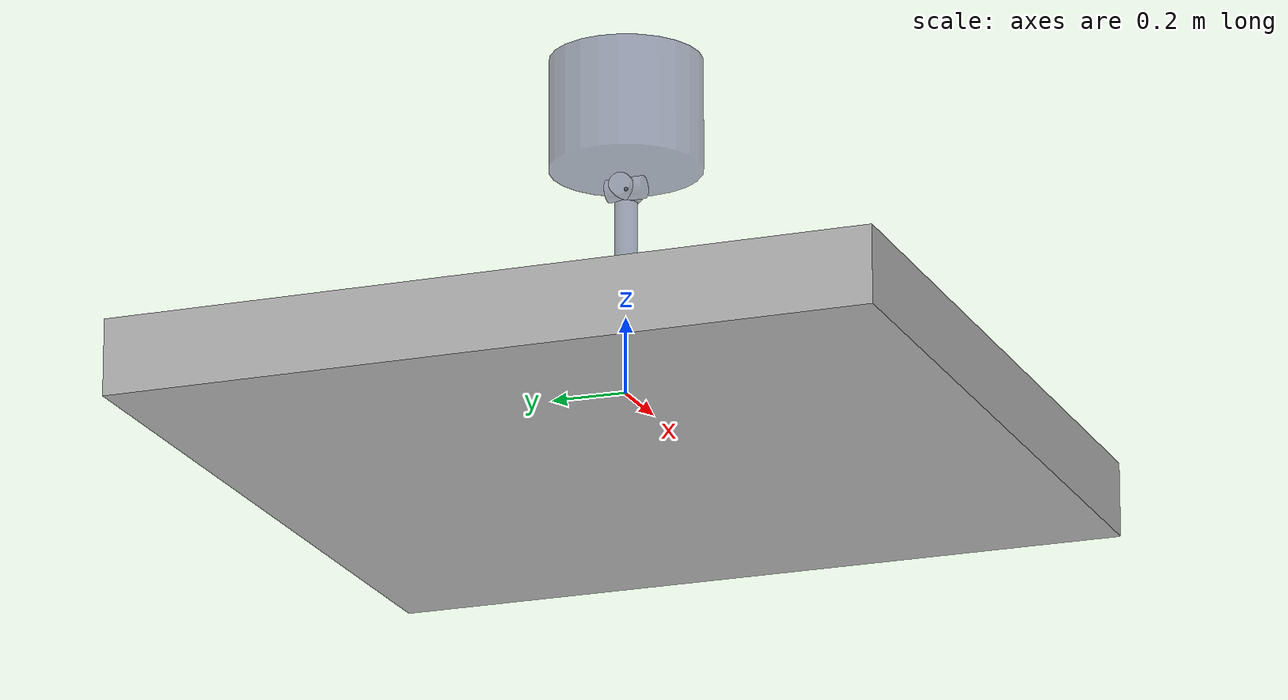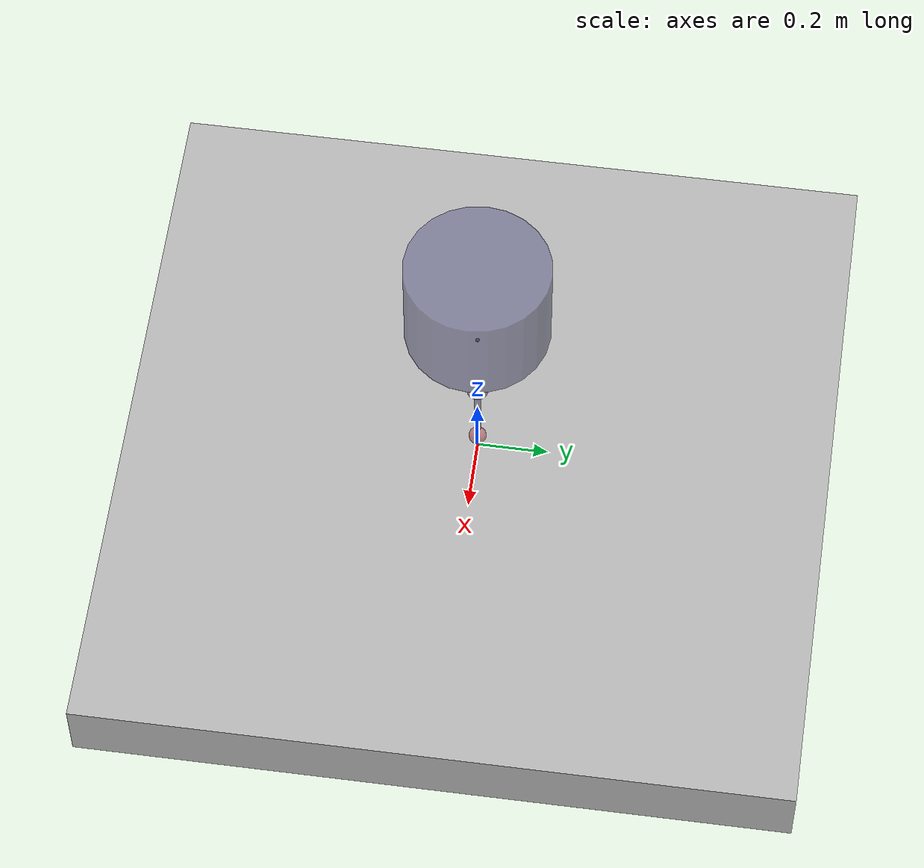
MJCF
<mujoco>
  <compiler coordinate="local" angle="degree"/>
  <option timestep="0.001" iterations="100" tolerance="1e-10" solver="Newton" gravity="0 0 -9.81"/>

  <visual>
    <map stiffness="2" stiffnessrot="100"/>
    <rgba haze="0.5 0.5 0.5 1"/>
    <quality shadowsize="2048"/>
    <headlight ambient="0.5 0.5 0.5"  diffuse="0.4 0.4 0.4" specular="0.5 0.5 0.5"/>
  </visual>

  <asset>
    <texture type="skybox" builtin="gradient" rgb1="0.5 0.5 0.5" rgb2="0.5 0.5 0.5" width="512" height="512"/>
    <texture name="texplane" type="2d" builtin="checker" rgb1="1 1 1" rgb2="1 1 1" width="512" height="512" mark="cross" markrgb="0 0 0"/>
    <material name="matplane" reflectance="0.0" texture="texplane" texrepeat="1 1" texuniform="true"/>
  </asset>

  <worldbody>
    <light mode="targetbodycom" target="model" directional="false" diffuse="0.3 0.3 0.3" specular="0.5 0.5 0.5" pos="4 0 4.0" dir="-1 0 -1" castshadow="true"/>
    <!-- ground top at z=0 to match tact's implicit ground plane -->
    <geom name="floor" type="box" pos="0 0 -0.10" size="1 1 0.1" condim="3" rgba="0.7 0.7 0.7 1"/>

    <body name="model" pos="0 0 0.55">
      <freejoint/>
      <inertial pos="0 0 0.2" mass="1" diaginertia="0.016 0.016 0.016"/>
      <geom name="head" type="cylinder" fromto="0 0 0.35  0 0 0.05" size="0.2" mass="0" rgba="0.3 0.3 0.5 0.5"/>
      <site name="base" pos="0 0 0" euler="0 0 0" type="sphere" size="0.005"/>

      <!-- link1: joint axis = base +X; sphere(r=0.1) inertia -> diag 0.0004 -->
      <body>
        <joint name="joint1" type="hinge" pos="0 0 0" axis="1 0 0" damping="0.8"/>
        <inertial pos="0 0 0" mass="0.1" diaginertia="0.0004 0.0004 0.0004"/>
        <geom type="cylinder" pos="0 0 0" euler="0 90 0" size="0.03 0.05" mass="0" rgba="0.3 0.3 0.5 0.5"/>

        <!-- link2: joint axis = base +Y; mk1 COM [0.075,0,0] in link2 frame (link2 +X = world -Z) -> [0,0,-0.075] here -->
        <body>
          <joint name="joint2" type="hinge" pos="0 0 0" axis="0 1 0" damping="0.8"/>
          <inertial pos="0 0 -0.075" mass="0.2" diaginertia="0.0008 0.0008 0.0008"/>
          <!-- shape #1: cylinder along link2 +Z (= world +Y) at origin -->
          <geom type="cylinder" pos="0 0 0" euler="90 0 0" size="0.03 0.05" mass="0" rgba="0.3 0.3 0.5 0.5"/>
          <!-- shape #2: cylinder along world -Z, center 0.15 m below joint2, half-length 0.11, radius 0.03 -->
          <geom type="cylinder" fromto="0 0 -0.04  0 0 -0.26" size="0.03" mass="0" rgba="0.3 0.3 0.5 0.5"/>

          <body>
            <joint name="joint3" type="slide" axis="0 0 -1"
                   stiffness="1000" damping="3"
                   springref="0.01" range="-0.15 0" limited="true"/>
            <inertial pos="0 0 -0.38" mass="0.1" diaginertia="0.0004 0.0004 0.0004"/>
            <geom type="cylinder" fromto="0 0 -0.14  0 0 -0.46" size="0.01" mass="0" rgba="0.3 0.3 0.5 0.5"/>
            <geom name="foot" type="sphere" pos="0 0 -0.50" size="0.025" mass="0" rgba="0.8 0.3 0.3 0.5"/>
            <site name="endtip" pos="0 0 -0.50" euler="180 0 0" type="sphere" size="0.005"/>
          </body>
        </body>
      </body>
    </body>
  </worldbody>

  <contact>
    <pair geom1="floor" geom2="foot"
          condim="6"
          solref="-35000 -150"
          solimp="0.99 0.99 0.001 0.5 2"
          friction="0.9 0.9 0.035 0.0125 0.0125"/>
    <!-- base also has contact:[1,mat1] in mk1.yaml; base-floor uses the same averaged params (geom name='head' kept) -->
    <pair geom1="floor" geom2="head"
          condim="6"
          solref="-35000 -150"
          solimp="0.99 0.99 0.001 0.5 2"
          friction="0.9 0.9 0.035 0.0125 0.0125"/>
  </contact>

  <actuator>
    <!-- motor: feedforward torque channel (ctrl = tau, paired 1:1 with position below) -->
    <motor name="motor1" joint="joint1" />
    <motor name="motor2" joint="joint2" />
    <motor name="motor3" joint="joint3" />
    <position joint="joint1" kp="10" kv="0"/>
    <position joint="joint2" kp="10" kv="0"/>
    <position joint="joint3" kp="10" kv="0"/>
  </actuator>

  <sensor>
    <jointpos joint="joint1"/>
    <jointpos joint="joint2"/>
    <jointpos joint="joint3"/>

    <jointvel joint="joint1"/>
    <jointvel joint="joint2"/>
    <jointvel joint="joint3"/>

    <force site="endtip"/>
    <torque site="endtip"/>

    <framequat objtype="site" objname="base"/>

    <accelerometer site="base"/>
    <gyro site="base"/>

    <framelinvel objtype="site" objname="base"/>
    <framepos objtype="site" objname="base"/>

  </sensor>
</mujoco>
